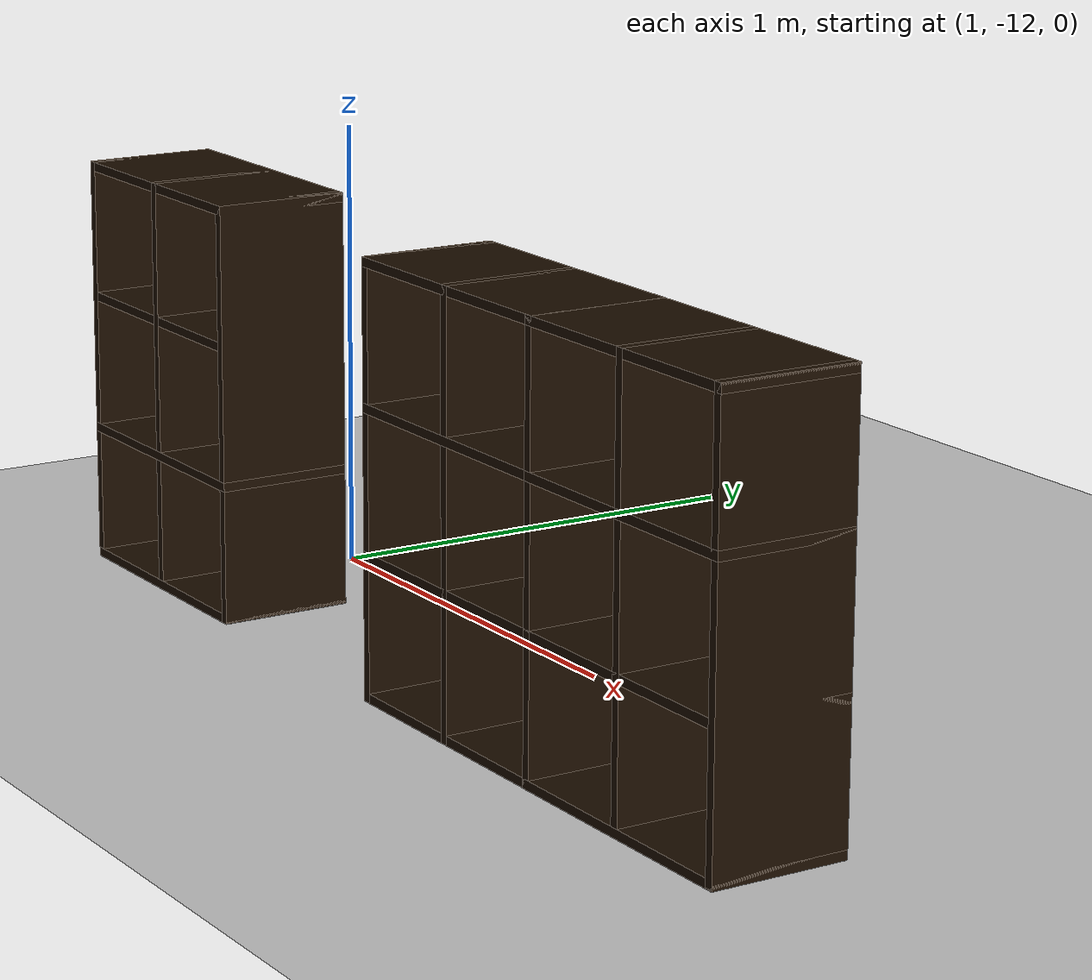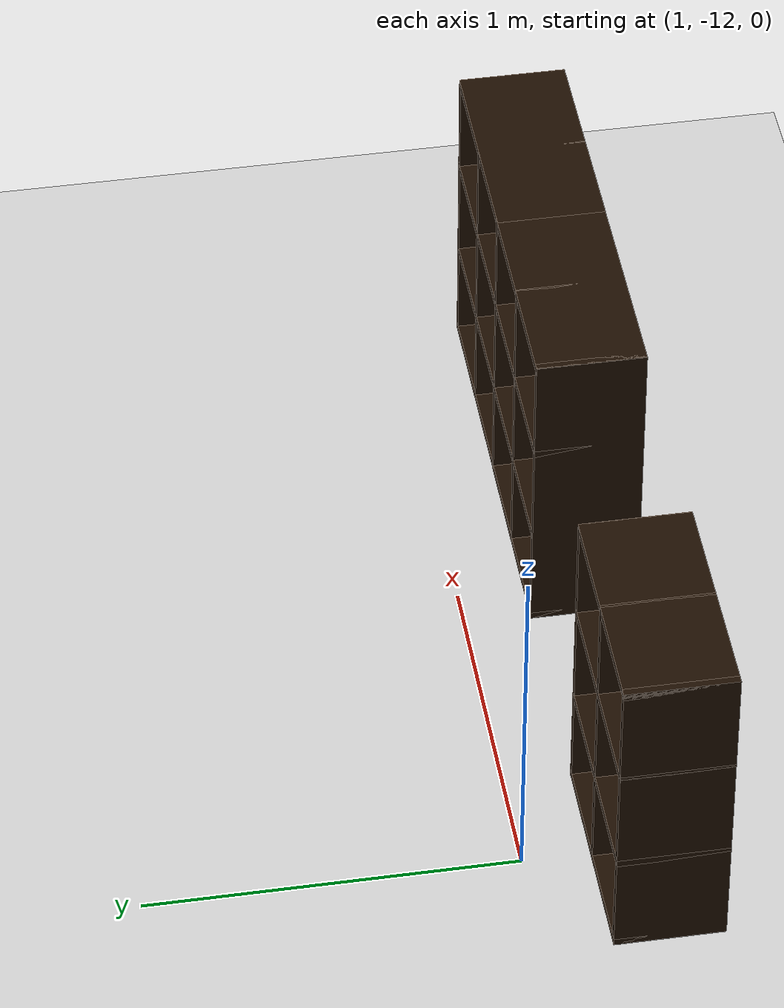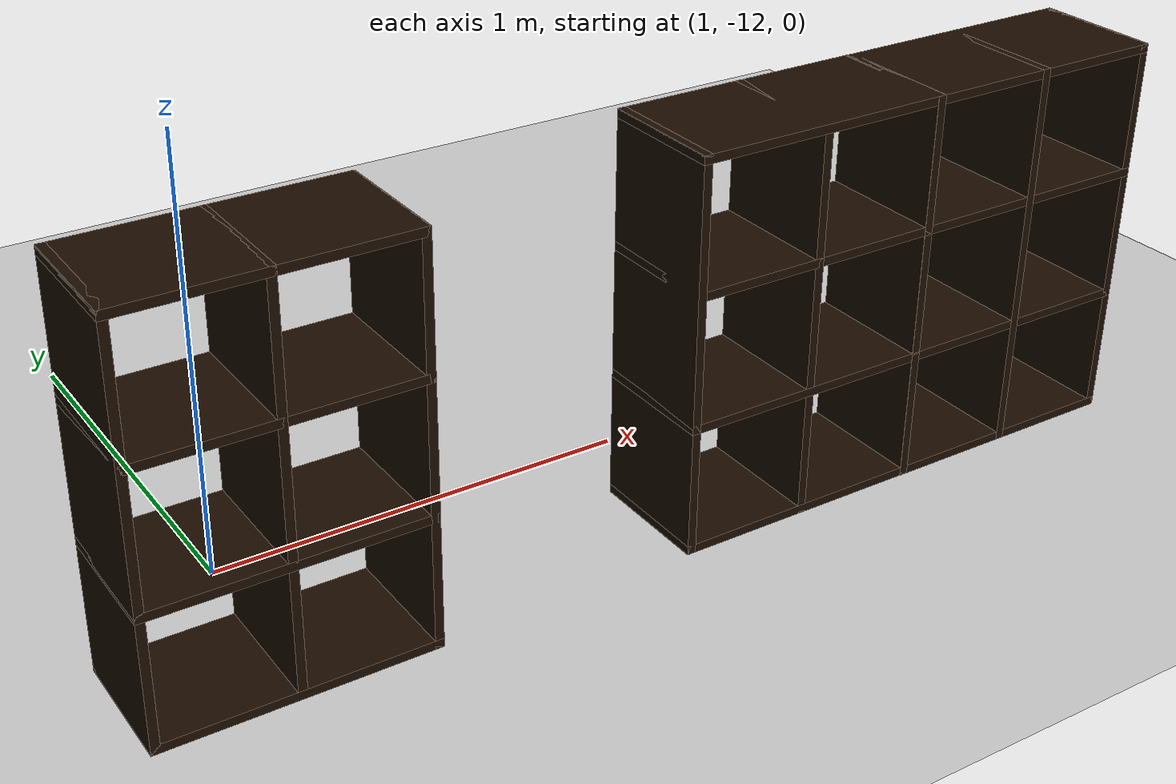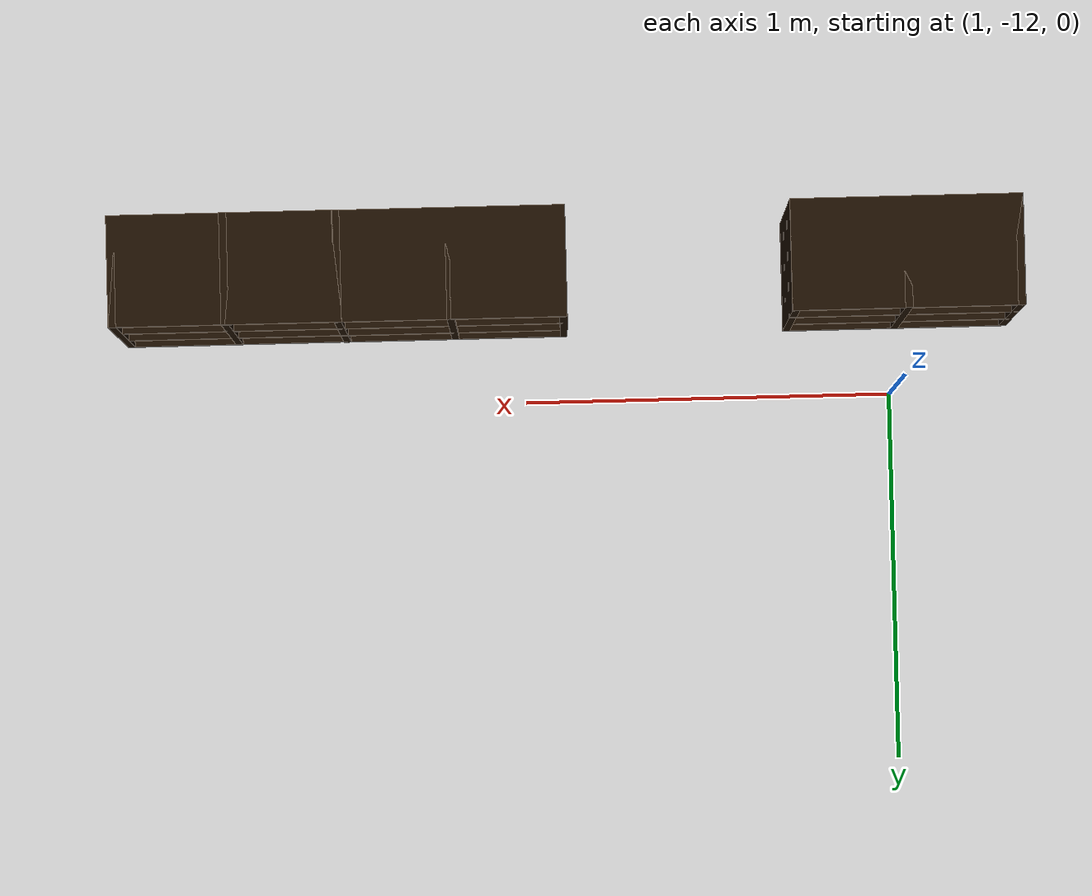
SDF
<sdf version="1.6">
 <world name="default">
  <model name="ground_plane">
   <static>1</static>
   <link name="link">
    <collision name="collision">
     <geometry><plane><normal>0 0 1</normal><size>100 100</size></plane></geometry>
     <surface><friction><ode><mu>100</mu><mu2>50</mu2></ode></friction></surface>
    </collision>
    <visual name="visual">
     <cast_shadows>0</cast_shadows>
     <geometry><plane><normal>0 0 1</normal><size>100 100</size></plane></geometry>
     <material>
      <script><uri>file://media/materials/scripts/gazebo.material</uri><name>Gazebo/Grey</name></script>
     </material>
    </visual>
   </link>
  </model>
  <model name="6_Cube_StorageE_clone">
   <link name="Wall_0">
    <pose>0 0 0.01 0 -0 0</pose>
    <inertial>
     <mass>1.6201</mass>
     <inertia><ixx>0.0119</ixx><iyy>0.0631</iyy><izz>0.0513</izz><ixy>0</ixy><ixz>0</ixz><iyz>0</iyz></inertia>
    </inertial>
    <collision name="Wall_0_Collision"><geometry><box><size>0.616 0.296 0.02</size></box></geometry></collision>
    <visual name="Wall_0_Visual">
     <geometry><box><size>0.616 0.296 0.02</size></box></geometry>
     <material>
      <script><uri>file://media/materials/scripts/gazebo.material</uri><name>Gazebo/Grey</name></script>
      <ambient>0.105882 0.0509804 0 1</ambient>
     </material>
    </visual>
   </link>
   <joint name="0_2" type="fixed">
    <pose>-0.308 0 0 0 -0 0</pose>
    <parent>Wall_2</parent>
    <child>Wall_0</child>
    <axis>
     <xyz>1 0 0</xyz>
     <use_parent_model_frame>0</use_parent_model_frame>
     <limit><lower>-1e+16</lower><upper>1e+16</upper></limit>
    </axis>
   </joint>
   <joint name="0_12" type="fixed">
    <parent>Wall_12</parent>
    <child>Wall_0</child>
    <axis>
     <xyz>0 0 1</xyz>
     <use_parent_model_frame>0</use_parent_model_frame>
     <limit><lower>-1e+16</lower><upper>1e+16</upper></limit>
    </axis>
   </joint>
   <joint name="0_4" type="fixed">
    <pose>0.308 0 0 0 -0 0</pose>
    <parent>Wall_4</parent>
    <child>Wall_0</child>
    <axis>
     <xyz>1 0 0</xyz>
     <use_parent_model_frame>0</use_parent_model_frame>
     <limit><lower>-1e+16</lower><upper>1e+16</upper></limit>
    </axis>
   </joint>
   <link name="Wall_10">
    <pose>0 0 0.61 0 -0 0</pose>
    <inertial>
     <mass>1.6201</mass>
     <inertia><ixx>0.0119</ixx><iyy>0.0631</iyy><izz>0.0513</izz><ixy>0</ixy><ixz>0</ixz><iyz>0</iyz></inertia>
    </inertial>
    <collision name="Wall_10_Collision"><geometry><box><size>0.616 0.296 0.02</size></box></geometry></collision>
    <visual name="Wall_10_Visual">
     <geometry><box><size>0.616 0.296 0.02</size></box></geometry>
     <material>
      <script><uri>file://media/materials/scripts/gazebo.material</uri><name>Gazebo/Grey</name></script>
      <ambient>0.105882 0.0509804 0 1</ambient>
     </material>
    </visual>
   </link>
   <joint name="10_2" type="fixed">
    <pose>-0.308 0 0 0 -0 0</pose>
    <parent>Wall_2</parent>
    <child>Wall_10</child>
    <axis>
     <xyz>1 0 0</xyz>
     <use_parent_model_frame>0</use_parent_model_frame>
     <limit><lower>-1e+16</lower><upper>1e+16</upper></limit>
    </axis>
   </joint>
   <joint name="10_12" type="fixed">
    <parent>Wall_12</parent>
    <child>Wall_10</child>
    <axis>
     <xyz>0 0 1</xyz>
     <use_parent_model_frame>0</use_parent_model_frame>
     <limit><lower>-1e+16</lower><upper>1e+16</upper></limit>
    </axis>
   </joint>
   <joint name="10_4" type="fixed">
    <pose>0.308 0 0 0 -0 0</pose>
    <parent>Wall_4</parent>
    <child>Wall_10</child>
    <axis>
     <xyz>1 0 0</xyz>
     <use_parent_model_frame>0</use_parent_model_frame>
     <limit><lower>-1e+16</lower><upper>1e+16</upper></limit>
    </axis>
   </joint>
   <link name="Wall_12">
    <pose>0 0 0.4575 0 -0 0</pose>
    <inertial>
     <mass>2.4065</mass>
     <inertia><ixx>0.0177</ixx><iyy>0.1855</iyy><izz>0.168</izz><ixy>0</ixy><ixz>0</ixz><iyz>0</iyz></inertia>
    </inertial>
    <collision name="Wall_12_Collision"><geometry><box><size>0.02 0.296 0.915</size></box></geometry></collision>
    <visual name="Wall_12_Visual">
     <geometry><box><size>0.02 0.296 0.915</size></box></geometry>
     <material>
      <script><uri>file://media/materials/scripts/gazebo.material</uri><name>Gazebo/Grey</name></script>
      <ambient>0.105882 0.0509804 0 1</ambient>
     </material>
    </visual>
   </link>
   <link name="Wall_2">
    <pose>-0.298 0 0.4575 0 -0 0</pose>
    <inertial>
     <mass>2.4065</mass>
     <inertia><ixx>0.0177</ixx><iyy>0.1855</iyy><izz>0.168</izz><ixy>0</ixy><ixz>0</ixz><iyz>0</iyz></inertia>
    </inertial>
    <collision name="Wall_2_Collision"><geometry><box><size>0.02 0.296 0.915</size></box></geometry></collision>
    <visual name="Wall_2_Visual">
     <geometry><box><size>0.02 0.296 0.915</size></box></geometry>
     <material>
      <script><uri>file://media/materials/scripts/gazebo.material</uri><name>Gazebo/Grey</name></script>
      <ambient>0.105882 0.0509804 0 1</ambient>
     </material>
    </visual>
   </link>
   <link name="Wall_4">
    <pose>0.298 0 0.4575 0 -0 0</pose>
    <inertial>
     <mass>2.4065</mass>
     <inertia><ixx>0.0177</ixx><iyy>0.1855</iyy><izz>0.168</izz><ixy>0</ixy><ixz>0</ixz><iyz>0</iyz></inertia>
    </inertial>
    <collision name="Wall_4_Collision"><geometry><box><size>0.02 0.296 0.915</size></box></geometry></collision>
    <visual name="Wall_4_Visual">
     <geometry><box><size>0.02 0.296 0.915</size></box></geometry>
     <material>
      <script><uri>file://media/materials/scripts/gazebo.material</uri><name>Gazebo/Grey</name></script>
      <ambient>0.105882 0.0509804 0 1</ambient>
     </material>
    </visual>
   </link>
   <link name="Wall_6">
    <pose>0 0 0.905 0 -0 0</pose>
    <inertial>
     <mass>1.6201</mass>
     <inertia><ixx>0.0119</ixx><iyy>0.0631</iyy><izz>0.0513</izz><ixy>0</ixy><ixz>0</ixz><iyz>0</iyz></inertia>
    </inertial>
    <collision name="Wall_6_Collision"><geometry><box><size>0.616 0.296 0.02</size></box></geometry></collision>
    <visual name="Wall_6_Visual">
     <geometry><box><size>0.616 0.296 0.02</size></box></geometry>
     <material>
      <script><uri>file://media/materials/scripts/gazebo.material</uri><name>Gazebo/Grey</name></script>
      <ambient>0.105882 0.0509804 0 1</ambient>
     </material>
    </visual>
   </link>
   <joint name="6_2" type="fixed">
    <pose>-0.308 0 0 0 -0 0</pose>
    <parent>Wall_2</parent>
    <child>Wall_6</child>
    <axis>
     <xyz>2 0 0</xyz>
     <use_parent_model_frame>0</use_parent_model_frame>
     <limit><lower>-1e+16</lower><upper>1e+16</upper></limit>
    </axis>
   </joint>
   <joint name="6_12" type="fixed">
    <parent>Wall_12</parent>
    <child>Wall_6</child>
    <axis>
     <xyz>0 0 1</xyz>
     <use_parent_model_frame>0</use_parent_model_frame>
     <limit><lower>-1e+16</lower><upper>1e+16</upper></limit>
    </axis>
   </joint>
   <joint name="6_4" type="fixed">
    <pose>0.308 0 0 0 -0 0</pose>
    <parent>Wall_4</parent>
    <child>Wall_6</child>
    <axis>
     <xyz>1 0 0</xyz>
     <use_parent_model_frame>0</use_parent_model_frame>
     <limit><lower>-1e+16</lower><upper>1e+16</upper></limit>
    </axis>
   </joint>
   <link name="Wall_8">
    <pose>0 0 0.305 0 -0 0</pose>
    <inertial>
     <mass>1.6201</mass>
     <inertia><ixx>0.0119</ixx><iyy>0.0631</iyy><izz>0.0513</izz><ixy>0</ixy><ixz>0</ixz><iyz>0</iyz></inertia>
    </inertial>
    <collision name="Wall_8_Collision"><geometry><box><size>0.616 0.296 0.02</size></box></geometry></collision>
    <visual name="Wall_8_Visual">
     <geometry><box><size>0.616 0.296 0.02</size></box></geometry>
     <material>
      <script><uri>file://media/materials/scripts/gazebo.material</uri><name>Gazebo/Grey</name></script>
      <ambient>0.105882 0.0509804 0 1</ambient>
     </material>
    </visual>
   </link>
   <joint name="8_2" type="fixed">
    <pose>-0.308 0 0 0 -0 0</pose>
    <parent>Wall_2</parent>
    <child>Wall_8</child>
    <axis>
     <xyz>1 0 0</xyz>
     <use_parent_model_frame>0</use_parent_model_frame>
     <limit><lower>-1e+16</lower><upper>1e+16</upper></limit>
    </axis>
   </joint>
   <joint name="8_12" type="fixed">
    <parent>Wall_12</parent>
    <child>Wall_8</child>
    <axis>
     <xyz>0 0 1</xyz>
     <use_parent_model_frame>0</use_parent_model_frame>
     <limit><lower>-1e+16</lower><upper>1e+16</upper></limit>
    </axis>
   </joint>
   <joint name="8_4" type="fixed">
    <pose>0.308 0 0 0 -0 0</pose>
    <parent>Wall_4</parent>
    <child>Wall_8</child>
    <axis>
     <xyz>1 0 0</xyz>
     <use_parent_model_frame>0</use_parent_model_frame>
     <limit><lower>-1e+16</lower><upper>1e+16</upper></limit>
    </axis>
   </joint>
   <static>1</static>
   <pose>2.78747 -12.3304 0 0 -0 0</pose>
  </model>
  <model name="6_Cube_StorageE_clone_clone">
   <link name="Wall_0">
    <pose>0 0 0.01 0 -0 0</pose>
    <inertial>
     <mass>1.6201</mass>
     <inertia><ixx>0.0119</ixx><iyy>0.0631</iyy><izz>0.0513</izz><ixy>0</ixy><ixz>0</ixz><iyz>0</iyz></inertia>
    </inertial>
    <collision name="Wall_0_Collision"><geometry><box><size>0.616 0.296 0.02</size></box></geometry></collision>
    <visual name="Wall_0_Visual">
     <geometry><box><size>0.616 0.296 0.02</size></box></geometry>
     <material>
      <script><uri>file://media/materials/scripts/gazebo.material</uri><name>Gazebo/Grey</name></script>
      <ambient>0.105882 0.0509804 0 1</ambient>
     </material>
    </visual>
   </link>
   <joint name="0_2" type="fixed">
    <pose>-0.308 0 0 0 -0 0</pose>
    <parent>Wall_2</parent>
    <child>Wall_0</child>
    <axis>
     <xyz>1 0 0</xyz>
     <use_parent_model_frame>0</use_parent_model_frame>
     <limit><lower>-1e+16</lower><upper>1e+16</upper></limit>
    </axis>
   </joint>
   <joint name="0_12" type="fixed">
    <parent>Wall_12</parent>
    <child>Wall_0</child>
    <axis>
     <xyz>0 0 1</xyz>
     <use_parent_model_frame>0</use_parent_model_frame>
     <limit><lower>-1e+16</lower><upper>1e+16</upper></limit>
    </axis>
   </joint>
   <joint name="0_4" type="fixed">
    <pose>0.308 0 0 0 -0 0</pose>
    <parent>Wall_4</parent>
    <child>Wall_0</child>
    <axis>
     <xyz>1 0 0</xyz>
     <use_parent_model_frame>0</use_parent_model_frame>
     <limit><lower>-1e+16</lower><upper>1e+16</upper></limit>
    </axis>
   </joint>
   <link name="Wall_10">
    <pose>0 0 0.61 0 -0 0</pose>
    <inertial>
     <mass>1.6201</mass>
     <inertia><ixx>0.0119</ixx><iyy>0.0631</iyy><izz>0.0513</izz><ixy>0</ixy><ixz>0</ixz><iyz>0</iyz></inertia>
    </inertial>
    <collision name="Wall_10_Collision"><geometry><box><size>0.616 0.296 0.02</size></box></geometry></collision>
    <visual name="Wall_10_Visual">
     <geometry><box><size>0.616 0.296 0.02</size></box></geometry>
     <material>
      <script><uri>file://media/materials/scripts/gazebo.material</uri><name>Gazebo/Grey</name></script>
      <ambient>0.105882 0.0509804 0 1</ambient>
     </material>
    </visual>
   </link>
   <joint name="10_2" type="fixed">
    <pose>-0.308 0 0 0 -0 0</pose>
    <parent>Wall_2</parent>
    <child>Wall_10</child>
    <axis>
     <xyz>1 0 0</xyz>
     <use_parent_model_frame>0</use_parent_model_frame>
     <limit><lower>-1e+16</lower><upper>1e+16</upper></limit>
    </axis>
   </joint>
   <joint name="10_12" type="fixed">
    <parent>Wall_12</parent>
    <child>Wall_10</child>
    <axis>
     <xyz>0 0 1</xyz>
     <use_parent_model_frame>0</use_parent_model_frame>
     <limit><lower>-1e+16</lower><upper>1e+16</upper></limit>
    </axis>
   </joint>
   <joint name="10_4" type="fixed">
    <pose>0.308 0 0 0 -0 0</pose>
    <parent>Wall_4</parent>
    <child>Wall_10</child>
    <axis>
     <xyz>1 0 0</xyz>
     <use_parent_model_frame>0</use_parent_model_frame>
     <limit><lower>-1e+16</lower><upper>1e+16</upper></limit>
    </axis>
   </joint>
   <link name="Wall_12">
    <pose>0 0 0.4575 0 -0 0</pose>
    <inertial>
     <mass>2.4065</mass>
     <inertia><ixx>0.0177</ixx><iyy>0.1855</iyy><izz>0.168</izz><ixy>0</ixy><ixz>0</ixz><iyz>0</iyz></inertia>
    </inertial>
    <collision name="Wall_12_Collision"><geometry><box><size>0.02 0.296 0.915</size></box></geometry></collision>
    <visual name="Wall_12_Visual">
     <geometry><box><size>0.02 0.296 0.915</size></box></geometry>
     <material>
      <script><uri>file://media/materials/scripts/gazebo.material</uri><name>Gazebo/Grey</name></script>
      <ambient>0.105882 0.0509804 0 1</ambient>
     </material>
    </visual>
   </link>
   <link name="Wall_2">
    <pose>-0.298 0 0.4575 0 -0 0</pose>
    <inertial>
     <mass>2.4065</mass>
     <inertia><ixx>0.0177</ixx><iyy>0.1855</iyy><izz>0.168</izz><ixy>0</ixy><ixz>0</ixz><iyz>0</iyz></inertia>
    </inertial>
    <collision name="Wall_2_Collision"><geometry><box><size>0.02 0.296 0.915</size></box></geometry></collision>
    <visual name="Wall_2_Visual">
     <geometry><box><size>0.02 0.296 0.915</size></box></geometry>
     <material>
      <script><uri>file://media/materials/scripts/gazebo.material</uri><name>Gazebo/Grey</name></script>
      <ambient>0.105882 0.0509804 0 1</ambient>
     </material>
    </visual>
   </link>
   <link name="Wall_4">
    <pose>0.298 0 0.4575 0 -0 0</pose>
    <inertial>
     <mass>2.4065</mass>
     <inertia><ixx>0.0177</ixx><iyy>0.1855</iyy><izz>0.168</izz><ixy>0</ixy><ixz>0</ixz><iyz>0</iyz></inertia>
    </inertial>
    <collision name="Wall_4_Collision"><geometry><box><size>0.02 0.296 0.915</size></box></geometry></collision>
    <visual name="Wall_4_Visual">
     <geometry><box><size>0.02 0.296 0.915</size></box></geometry>
     <material>
      <script><uri>file://media/materials/scripts/gazebo.material</uri><name>Gazebo/Grey</name></script>
      <ambient>0.105882 0.0509804 0 1</ambient>
     </material>
    </visual>
   </link>
   <link name="Wall_6">
    <pose>0 0 0.905 0 -0 0</pose>
    <inertial>
     <mass>1.6201</mass>
     <inertia><ixx>0.0119</ixx><iyy>0.0631</iyy><izz>0.0513</izz><ixy>0</ixy><ixz>0</ixz><iyz>0</iyz></inertia>
    </inertial>
    <collision name="Wall_6_Collision"><geometry><box><size>0.616 0.296 0.02</size></box></geometry></collision>
    <visual name="Wall_6_Visual">
     <geometry><box><size>0.616 0.296 0.02</size></box></geometry>
     <material>
      <script><uri>file://media/materials/scripts/gazebo.material</uri><name>Gazebo/Grey</name></script>
      <ambient>0.105882 0.0509804 0 1</ambient>
     </material>
    </visual>
   </link>
   <joint name="6_2" type="fixed">
    <pose>-0.308 0 0 0 -0 0</pose>
    <parent>Wall_2</parent>
    <child>Wall_6</child>
    <axis>
     <xyz>2 0 0</xyz>
     <use_parent_model_frame>0</use_parent_model_frame>
     <limit><lower>-1e+16</lower><upper>1e+16</upper></limit>
    </axis>
   </joint>
   <joint name="6_12" type="fixed">
    <parent>Wall_12</parent>
    <child>Wall_6</child>
    <axis>
     <xyz>0 0 1</xyz>
     <use_parent_model_frame>0</use_parent_model_frame>
     <limit><lower>-1e+16</lower><upper>1e+16</upper></limit>
    </axis>
   </joint>
   <joint name="6_4" type="fixed">
    <pose>0.308 0 0 0 -0 0</pose>
    <parent>Wall_4</parent>
    <child>Wall_6</child>
    <axis>
     <xyz>1 0 0</xyz>
     <use_parent_model_frame>0</use_parent_model_frame>
     <limit><lower>-1e+16</lower><upper>1e+16</upper></limit>
    </axis>
   </joint>
   <link name="Wall_8">
    <pose>0 0 0.305 0 -0 0</pose>
    <inertial>
     <mass>1.6201</mass>
     <inertia><ixx>0.0119</ixx><iyy>0.0631</iyy><izz>0.0513</izz><ixy>0</ixy><ixz>0</ixz><iyz>0</iyz></inertia>
    </inertial>
    <collision name="Wall_8_Collision"><geometry><box><size>0.616 0.296 0.02</size></box></geometry></collision>
    <visual name="Wall_8_Visual">
     <geometry><box><size>0.616 0.296 0.02</size></box></geometry>
     <material>
      <script><uri>file://media/materials/scripts/gazebo.material</uri><name>Gazebo/Grey</name></script>
      <ambient>0.105882 0.0509804 0 1</ambient>
     </material>
    </visual>
   </link>
   <joint name="8_2" type="fixed">
    <pose>-0.308 0 0 0 -0 0</pose>
    <parent>Wall_2</parent>
    <child>Wall_8</child>
    <axis>
     <xyz>1 0 0</xyz>
     <use_parent_model_frame>0</use_parent_model_frame>
     <limit><lower>-1e+16</lower><upper>1e+16</upper></limit>
    </axis>
   </joint>
   <joint name="8_12" type="fixed">
    <parent>Wall_12</parent>
    <child>Wall_8</child>
    <axis>
     <xyz>0 0 1</xyz>
     <use_parent_model_frame>0</use_parent_model_frame>
     <limit><lower>-1e+16</lower><upper>1e+16</upper></limit>
    </axis>
   </joint>
   <joint name="8_4" type="fixed">
    <pose>0.308 0 0 0 -0 0</pose>
    <parent>Wall_4</parent>
    <child>Wall_8</child>
    <axis>
     <xyz>1 0 0</xyz>
     <use_parent_model_frame>0</use_parent_model_frame>
     <limit><lower>-1e+16</lower><upper>1e+16</upper></limit>
    </axis>
   </joint>
   <static>1</static>
   <pose>2.19141 -12.3298 0 0 -0 0</pose>
  </model>
  <model name="6_Cube_StorageE_clone_clone_1">
   <link name="Wall_0">
    <pose>0 0 0.01 0 -0 0</pose>
    <inertial>
     <mass>1.6201</mass>
     <inertia><ixx>0.0119</ixx><iyy>0.0631</iyy><izz>0.0513</izz><ixy>0</ixy><ixz>0</ixz><iyz>0</iyz></inertia>
    </inertial>
    <collision name="Wall_0_Collision"><geometry><box><size>0.616 0.296 0.02</size></box></geometry></collision>
    <visual name="Wall_0_Visual">
     <geometry><box><size>0.616 0.296 0.02</size></box></geometry>
     <material>
      <script><uri>file://media/materials/scripts/gazebo.material</uri><name>Gazebo/Grey</name></script>
      <ambient>0.105882 0.0509804 0 1</ambient>
     </material>
    </visual>
   </link>
   <joint name="0_2" type="fixed">
    <pose>-0.308 0 0 0 -0 0</pose>
    <parent>Wall_2</parent>
    <child>Wall_0</child>
    <axis>
     <xyz>1 0 0</xyz>
     <use_parent_model_frame>0</use_parent_model_frame>
     <limit><lower>-1e+16</lower><upper>1e+16</upper></limit>
    </axis>
   </joint>
   <joint name="0_12" type="fixed">
    <parent>Wall_12</parent>
    <child>Wall_0</child>
    <axis>
     <xyz>0 0 1</xyz>
     <use_parent_model_frame>0</use_parent_model_frame>
     <limit><lower>-1e+16</lower><upper>1e+16</upper></limit>
    </axis>
   </joint>
   <joint name="0_4" type="fixed">
    <pose>0.308 0 0 0 -0 0</pose>
    <parent>Wall_4</parent>
    <child>Wall_0</child>
    <axis>
     <xyz>1 0 0</xyz>
     <use_parent_model_frame>0</use_parent_model_frame>
     <limit><lower>-1e+16</lower><upper>1e+16</upper></limit>
    </axis>
   </joint>
   <link name="Wall_10">
    <pose>0 0 0.61 0 -0 0</pose>
    <inertial>
     <mass>1.6201</mass>
     <inertia><ixx>0.0119</ixx><iyy>0.0631</iyy><izz>0.0513</izz><ixy>0</ixy><ixz>0</ixz><iyz>0</iyz></inertia>
    </inertial>
    <collision name="Wall_10_Collision"><geometry><box><size>0.616 0.296 0.02</size></box></geometry></collision>
    <visual name="Wall_10_Visual">
     <geometry><box><size>0.616 0.296 0.02</size></box></geometry>
     <material>
      <script><uri>file://media/materials/scripts/gazebo.material</uri><name>Gazebo/Grey</name></script>
      <ambient>0.105882 0.0509804 0 1</ambient>
     </material>
    </visual>
   </link>
   <joint name="10_2" type="fixed">
    <pose>-0.308 0 0 0 -0 0</pose>
    <parent>Wall_2</parent>
    <child>Wall_10</child>
    <axis>
     <xyz>1 0 0</xyz>
     <use_parent_model_frame>0</use_parent_model_frame>
     <limit><lower>-1e+16</lower><upper>1e+16</upper></limit>
    </axis>
   </joint>
   <joint name="10_12" type="fixed">
    <parent>Wall_12</parent>
    <child>Wall_10</child>
    <axis>
     <xyz>0 0 1</xyz>
     <use_parent_model_frame>0</use_parent_model_frame>
     <limit><lower>-1e+16</lower><upper>1e+16</upper></limit>
    </axis>
   </joint>
   <joint name="10_4" type="fixed">
    <pose>0.308 0 0 0 -0 0</pose>
    <parent>Wall_4</parent>
    <child>Wall_10</child>
    <axis>
     <xyz>1 0 0</xyz>
     <use_parent_model_frame>0</use_parent_model_frame>
     <limit><lower>-1e+16</lower><upper>1e+16</upper></limit>
    </axis>
   </joint>
   <link name="Wall_12">
    <pose>0 0 0.4575 0 -0 0</pose>
    <inertial>
     <mass>2.4065</mass>
     <inertia><ixx>0.0177</ixx><iyy>0.1855</iyy><izz>0.168</izz><ixy>0</ixy><ixz>0</ixz><iyz>0</iyz></inertia>
    </inertial>
    <collision name="Wall_12_Collision"><geometry><box><size>0.02 0.296 0.915</size></box></geometry></collision>
    <visual name="Wall_12_Visual">
     <geometry><box><size>0.02 0.296 0.915</size></box></geometry>
     <material>
      <script><uri>file://media/materials/scripts/gazebo.material</uri><name>Gazebo/Grey</name></script>
      <ambient>0.105882 0.0509804 0 1</ambient>
     </material>
    </visual>
   </link>
   <link name="Wall_2">
    <pose>-0.298 0 0.4575 0 -0 0</pose>
    <inertial>
     <mass>2.4065</mass>
     <inertia><ixx>0.0177</ixx><iyy>0.1855</iyy><izz>0.168</izz><ixy>0</ixy><ixz>0</ixz><iyz>0</iyz></inertia>
    </inertial>
    <collision name="Wall_2_Collision"><geometry><box><size>0.02 0.296 0.915</size></box></geometry></collision>
    <visual name="Wall_2_Visual">
     <geometry><box><size>0.02 0.296 0.915</size></box></geometry>
     <material>
      <script><uri>file://media/materials/scripts/gazebo.material</uri><name>Gazebo/Grey</name></script>
      <ambient>0.105882 0.0509804 0 1</ambient>
     </material>
    </visual>
   </link>
   <link name="Wall_4">
    <pose>0.298 0 0.4575 0 -0 0</pose>
    <inertial>
     <mass>2.4065</mass>
     <inertia><ixx>0.0177</ixx><iyy>0.1855</iyy><izz>0.168</izz><ixy>0</ixy><ixz>0</ixz><iyz>0</iyz></inertia>
    </inertial>
    <collision name="Wall_4_Collision"><geometry><box><size>0.02 0.296 0.915</size></box></geometry></collision>
    <visual name="Wall_4_Visual">
     <geometry><box><size>0.02 0.296 0.915</size></box></geometry>
     <material>
      <script><uri>file://media/materials/scripts/gazebo.material</uri><name>Gazebo/Grey</name></script>
      <ambient>0.105882 0.0509804 0 1</ambient>
     </material>
    </visual>
   </link>
   <link name="Wall_6">
    <pose>0 0 0.905 0 -0 0</pose>
    <inertial>
     <mass>1.6201</mass>
     <inertia><ixx>0.0119</ixx><iyy>0.0631</iyy><izz>0.0513</izz><ixy>0</ixy><ixz>0</ixz><iyz>0</iyz></inertia>
    </inertial>
    <collision name="Wall_6_Collision"><geometry><box><size>0.616 0.296 0.02</size></box></geometry></collision>
    <visual name="Wall_6_Visual">
     <geometry><box><size>0.616 0.296 0.02</size></box></geometry>
     <material>
      <script><uri>file://media/materials/scripts/gazebo.material</uri><name>Gazebo/Grey</name></script>
      <ambient>0.105882 0.0509804 0 1</ambient>
     </material>
    </visual>
   </link>
   <joint name="6_2" type="fixed">
    <pose>-0.308 0 0 0 -0 0</pose>
    <parent>Wall_2</parent>
    <child>Wall_6</child>
    <axis>
     <xyz>2 0 0</xyz>
     <use_parent_model_frame>0</use_parent_model_frame>
     <limit><lower>-1e+16</lower><upper>1e+16</upper></limit>
    </axis>
   </joint>
   <joint name="6_12" type="fixed">
    <parent>Wall_12</parent>
    <child>Wall_6</child>
    <axis>
     <xyz>0 0 1</xyz>
     <use_parent_model_frame>0</use_parent_model_frame>
     <limit><lower>-1e+16</lower><upper>1e+16</upper></limit>
    </axis>
   </joint>
   <joint name="6_4" type="fixed">
    <pose>0.308 0 0 0 -0 0</pose>
    <parent>Wall_4</parent>
    <child>Wall_6</child>
    <axis>
     <xyz>1 0 0</xyz>
     <use_parent_model_frame>0</use_parent_model_frame>
     <limit><lower>-1e+16</lower><upper>1e+16</upper></limit>
    </axis>
   </joint>
   <link name="Wall_8">
    <pose>0 0 0.305 0 -0 0</pose>
    <inertial>
     <mass>1.6201</mass>
     <inertia><ixx>0.0119</ixx><iyy>0.0631</iyy><izz>0.0513</izz><ixy>0</ixy><ixz>0</ixz><iyz>0</iyz></inertia>
    </inertial>
    <collision name="Wall_8_Collision"><geometry><box><size>0.616 0.296 0.02</size></box></geometry></collision>
    <visual name="Wall_8_Visual">
     <geometry><box><size>0.616 0.296 0.02</size></box></geometry>
     <material>
      <script><uri>file://media/materials/scripts/gazebo.material</uri><name>Gazebo/Grey</name></script>
      <ambient>0.105882 0.0509804 0 1</ambient>
     </material>
    </visual>
   </link>
   <joint name="8_2" type="fixed">
    <pose>-0.308 0 0 0 -0 0</pose>
    <parent>Wall_2</parent>
    <child>Wall_8</child>
    <axis>
     <xyz>1 0 0</xyz>
     <use_parent_model_frame>0</use_parent_model_frame>
     <limit><lower>-1e+16</lower><upper>1e+16</upper></limit>
    </axis>
   </joint>
   <joint name="8_12" type="fixed">
    <parent>Wall_12</parent>
    <child>Wall_8</child>
    <axis>
     <xyz>0 0 1</xyz>
     <use_parent_model_frame>0</use_parent_model_frame>
     <limit><lower>-1e+16</lower><upper>1e+16</upper></limit>
    </axis>
   </joint>
   <joint name="8_4" type="fixed">
    <pose>0.308 0 0 0 -0 0</pose>
    <parent>Wall_4</parent>
    <child>Wall_8</child>
    <axis>
     <xyz>1 0 0</xyz>
     <use_parent_model_frame>0</use_parent_model_frame>
     <limit><lower>-1e+16</lower><upper>1e+16</upper></limit>
    </axis>
   </joint>
   <static>1</static>
   <pose>0.981107 -12.3297 0 0 -0 0</pose>
  </model>
 </world>
</sdf>
